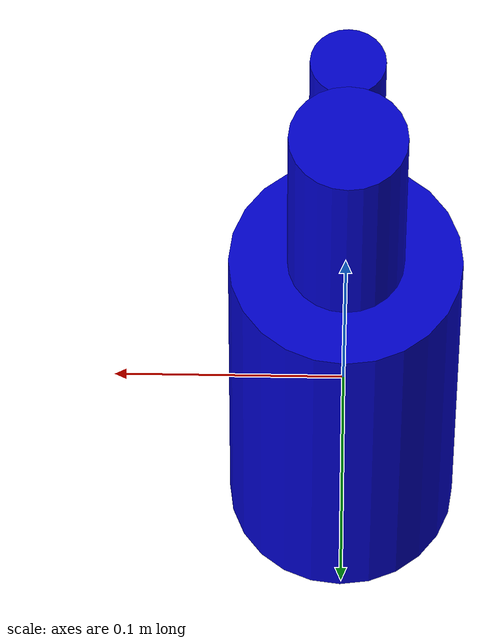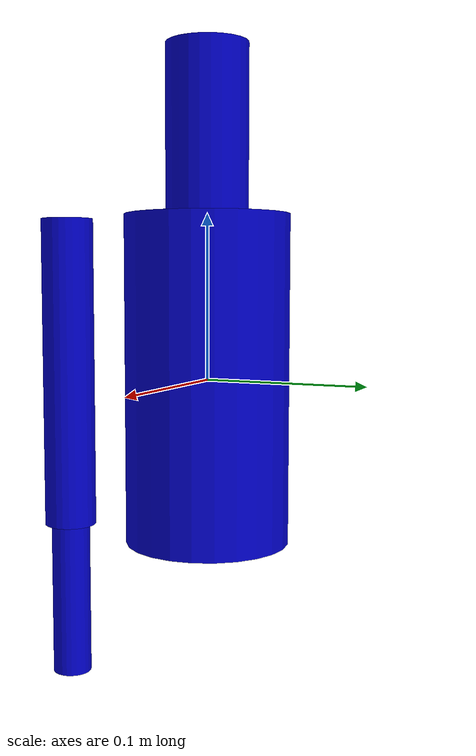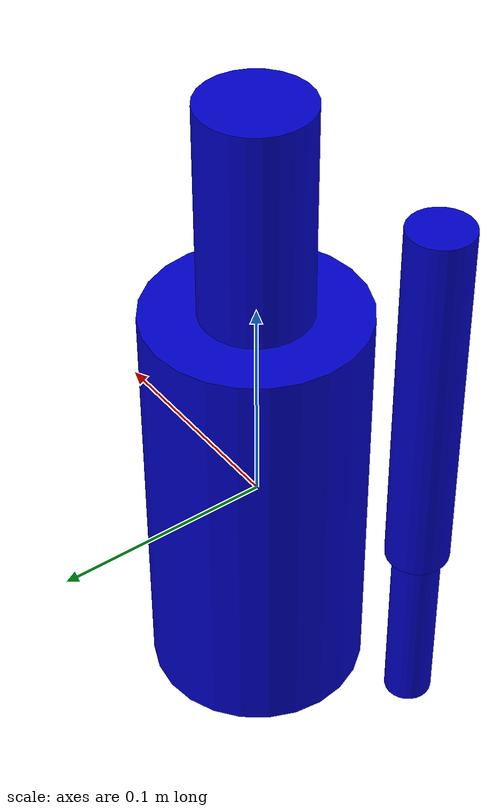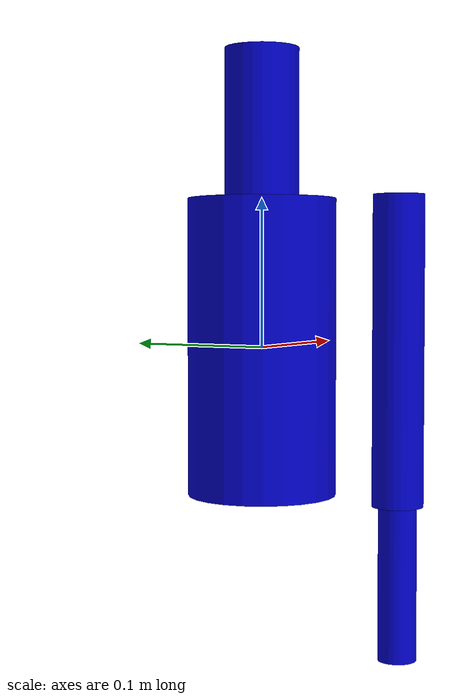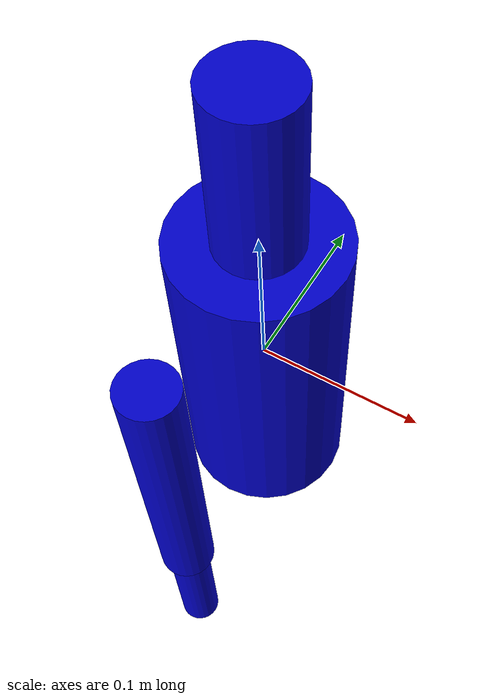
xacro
<?xml version="1.0"?>
<robot name="generic_humanoid" xmlns:xacro="http://www.ros.org/wiki/xacro">

  <!-- Define common properties/macros -->
  <xacro:property name="M_PI" value="3.1415926535897931" />
  <xacro:property name="body_mass" value="1.0" />
  <xacro:property name="body_len" value="0.2" />
  <xacro:property name="body_rad" value="0.05" />

  <!-- Macro for a generic cylinder link with inertia -->
  <xacro:macro name="cylinder_link" params="name mass length radius">
    <link name="${name}">
      <visual>
        <geometry>
          <cylinder length="${length}" radius="${radius}"/>
        </geometry>
        <material name="blue">
          <color rgba="0 0 0.8 1"/>
        </material>
      </visual>
      <collision>
        <geometry>
          <cylinder length="${length}" radius="${radius}"/>
        </geometry>
      </collision>
      <inertial>
        <mass value="${mass}"/>
        <inertia ixx="${(1/12)*mass*(3*radius*radius + length*length)}" ixy="0.0" ixz="0.0"
                 iyy="${(1/12)*mass*(3*radius*radius + length*length)}" iyz="0.0"
                 izz="${(1/2)*mass*radius*radius}"/>
      </inertial>
    </link>
  </xacro:macro>

  <!-- Base Link: Torso -->
  <xacro:cylinder_link name="torso_link" mass="${body_mass}" length="${body_len}" radius="${body_rad}"/>

  <!-- Head Joint and Link -->
  <joint name="head_joint" type="revolute">
    <parent link="torso_link"/>
    <child link="head_link"/>
    <origin xyz="0 0 ${body_len/2 + body_len/4}" rpy="0 0 0"/>
    <axis xyz="0 0 1"/>
    <limit lower="${-M_PI/4}" upper="${M_PI/4}" effort="10.0" velocity="1.0"/>
  </joint>
  <xacro:cylinder_link name="head_link" mass="${body_mass/4}" length="${body_len/2}" radius="${body_rad/2}"/>

  <!-- Right Shoulder Joint and Link -->
  <joint name="right_shoulder_joint" type="revolute">
    <parent link="torso_link"/>
    <child link="right_upper_arm_link"/>
    <origin xyz="0 ${-(body_rad + body_len/4)} 0" rpy="0 0 0"/>
    <axis xyz="1 0 0"/>
    <limit lower="${-M_PI/2}" upper="${M_PI/2}" effort="10.0" velocity="1.0"/>
  </joint>
  <xacro:cylinder_link name="right_upper_arm_link" mass="${body_mass/4}" length="${body_len}" radius="${body_rad/3}"/>

  <!-- Right Elbow Joint and Link -->
  <joint name="right_elbow_joint" type="revolute">
    <parent link="right_upper_arm_link"/>
    <child link="right_forearm_link"/>
    <origin xyz="0 0 ${-body_len/2}" rpy="0 0 0"/>
    <axis xyz="1 0 0"/>
    <limit lower="${-M_PI/2}" upper="${0}" effort="10.0" velocity="1.0"/>
  </joint>
  <xacro:cylinder_link name="right_forearm_link" mass="${body_mass/6}" length="${body_len}" radius="${body_rad/4}"/>

</robot>
